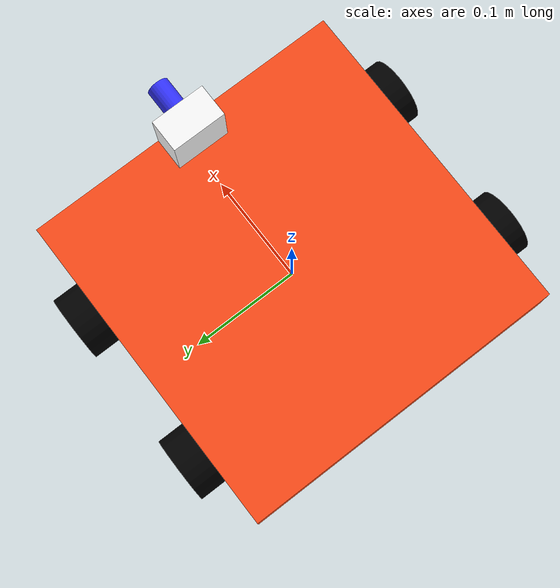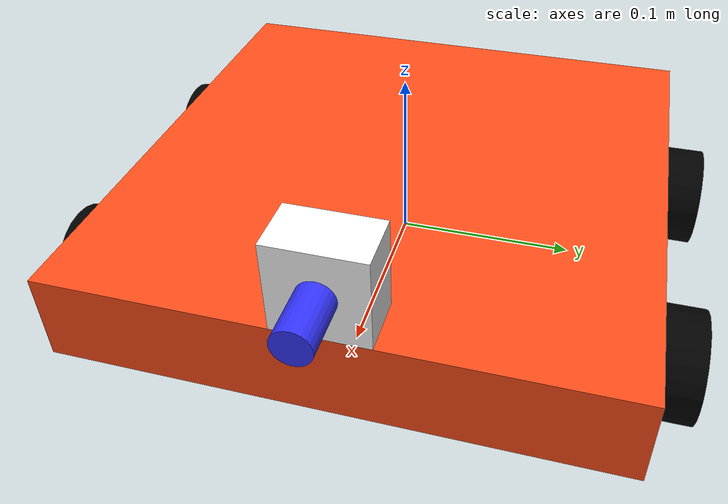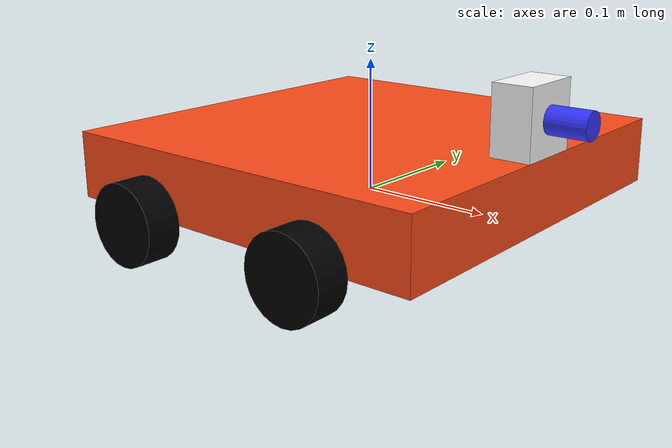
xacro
<?xml version="1.0"?>
<robot xmlns:xacro="http://www.ros.org/wiki/xacro"  name="robot">

     <xacro:arg name="use_ros2_control" default="true"/>

    <!-- define the robot structure -->
    <xacro:include filename="robot.core.xacro" />

    <!-- gazebo materials definitions and gazebo reporting joint states and camera feed from sim. -->
    <xacro:include filename="robot.gazebo.xacro" />

    <!-- gazebo represents and controls the robot via diff drive.  camera etc
        comment out when using either gazebo or hardware ros2 control. -->

    <!-- make a choice about ros control - hardware or simulation -->
    <xacro:if value="$(arg use_ros2_control)">
        <!-- USE ROS2 CONTROL is true -->
        <xacro:include filename="robot.ros2.control.xacro" />
    </xacro:if>

    <xacro:unless value="$(arg use_ros2_control)">
        <!-- USE ROS2 CONTROL is false -->
        <xacro:include filename="robot.gazebo.roscontrol.xacro" />
    </xacro:unless>

    <!-- Should have chosen one by now -->
</robot>

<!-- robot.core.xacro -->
<robot xmlns:xacro="http://www.ros.org/wiki/xacro">

	<xacro:include filename="robot.include.xacro" />

	<!-- base link -->
	<link name="base_link">
	</link>

	<xacro:include filename="robot.chassis.xacro" />
	<xacro:include filename="robot.wheels.xacro" />
	<xacro:include filename="robot.camera.xacro" />
</robot>

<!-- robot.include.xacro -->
<robot xmlns:xacro="http://www.ros.org/wiki/xacro" >

    <!-- Specify some standard inertial calculations https://en.wikipedia.org/wiki/List_of_moments_of_inertia -->
    <!-- These make use of xacro's mathematical functionality -->

    <xacro:macro name="inertial_sphere" params="mass radius *origin">
        <inertial>
            <xacro:insert_block name="origin"/>
            <mass value="${mass}" />
            <inertia ixx="${(2/5) * mass * (radius*radius)}" ixy="0.0" ixz="0.0"
                    iyy="${(2/5) * mass * (radius*radius)}" iyz="0.0"
                    izz="${(2/5) * mass * (radius*radius)}" />
        </inertial>
    </xacro:macro>

    <xacro:macro name="inertial_box" params="mass x y z *origin">
        <inertial>
            <xacro:insert_block name="origin"/>
            <mass value="${mass}" />
            <inertia ixx="${(1/12) * mass * (y*y+z*z)}" ixy="0.0" ixz="0.0"
                    iyy="${(1/12) * mass * (x*x+z*z)}" iyz="0.0"
                    izz="${(1/12) * mass * (x*x+y*y)}" />
        </inertial>
    </xacro:macro>

    <xacro:macro name="inertial_cylinder" params="mass length radius *origin">
        <inertial>
            <xacro:insert_block name="origin"/>
            <mass value="${mass}" />
            <inertia ixx="${(1/12) * mass * (3*radius*radius + length*length)}" ixy="0.0" ixz="0.0"
                    iyy="${(1/12) * mass * (3*radius*radius + length*length)}" iyz="0.0"
                    izz="${(1/2) * mass * (radius*radius)}" />
        </inertial>
    </xacro:macro>

    <xacro:macro name="wheel_joint" params="name parent child xyz side damping friction max_effort max_velocity">
      <joint name="${name}" type="continuous">
        <parent link="${parent}" />
        <child link="${child}" />

        <xacro:if value="${side == 'left'}">
            <origin xyz="${xyz}" rpy="-${pi/2} 0 0"/>
            <axis xyz="0 0 -1"/>
        </xacro:if>
        <xacro:if value="${side == 'right'}">
            <origin xyz="${xyz}" rpy="${pi/2} 0 0"/>
            <axis xyz="0 0 1"/>
        </xacro:if>
        <dynamics damping="${damping}" friction="${friction}"/>
        <limit effort="${max_effort}" velocity="${max_velocity}"/>
      </joint>
    </xacro:macro>

    <xacro:macro name="wheel_link" params="name in_radius in_length in_mass">
        <link name="${name}">
            <visual>
                <geometry> <!-- the weheels are 60mm diameter, 25mm thick. -->
                    <cylinder radius="${in_radius}" length="${in_length}"/>
                </geometry>
                <material name="black"/>
            </visual>

            <collision>
                <origin xyz="0 0 0" rpy="0 0 0"/>
                <geometry>
                    <cylinder length="${in_length}" radius="${in_radius}" />
                </geometry>
            </collision>
            <xacro:inertial_cylinder mass="${in_mass}" length="${in_length}" radius="${in_radius}">
                <!-- I think the origin is the centre of mass - middle of the cylinder -->
                <origin xyz="0 0 0" rpy="0 0 0"/>
            </xacro:inertial_cylinder>
        </link>
    </xacro:macro>

    <xacro:macro name="ros2control_wheel" params="joint_name cmd_min cmd_max">
        <joint name="${joint_name}">
            <command_interface name="velocity">
                <param name="min">${cmd_min}</param>
                <param name="max">${cmd_max}</param>
            </command_interface>
            <state_interface name="velocity"/>
            <state_interface name="position"/>
        </joint>
    </xacro:macro>

    <!-- materials -->

    <material name="white">
        <color rgba="1 1 1 1" />
    </material>

    <material name="orange">
        <color rgba="1 0.3 0.1 1" />
    </material>

    <material name="blue">
        <color rgba="0.2 0.2 1 1" />
    </material>

    <material name="black">
        <color rgba="0 0 0 1" />
    </material>
</robot>

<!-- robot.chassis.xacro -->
<robot xmlns:xacro="http://www.ros.org/wiki/xacro">
	<!-- chassis
	  setting length/width/height as properties so we can do maths ops with them.
	-->

	<!-- 300mm (x) 300mm (y) and 50mm (z) -->
	<xacro:property name="chassis_length" value="0.3" />
    <xacro:property name="chassis_width" value="0.3" />
    <xacro:property name="chassis_height" value="0.05" />
    <xacro:property name="chassis_mass" value="100.0" />

	<joint name="chassis_joint" type="fixed">
		<parent link="base_link"/>
		<child link="chassis_link"/>
		<origin xyz="-${chassis_length/2} 0 0"/>
	</joint>

	<link name="chassis_link">
		<visual>
			<!-- position chassis origin 1/2 chassis lenght relative to the link. -->
			<origin xyz = "${chassis_length/2} 0 ${chassis_height/2}"/>
			<geometry>
				<box size="${chassis_length} ${chassis_width} ${chassis_height}"/>
			</geometry>
			<material name="orange"/>
		</visual>

		<collision>
            <origin xyz="${chassis_length/2} 0 ${chassis_height/2}" rpy="0 0 0"/>
            <geometry>
                <box size="${chassis_length} ${chassis_width} ${chassis_height}" />
            </geometry>
        </collision>
        <xacro:inertial_box mass="${chassis_mass}" x="${chassis_length}" y="${chassis_width}" z="${chassis_height}">
            <origin xyz="${chassis_length/2} 0 ${chassis_height/2}" rpy="0 0 0"/>
        </xacro:inertial_box>
	</link>

</robot>

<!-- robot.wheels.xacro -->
<robot xmlns:xacro="http://www.ros.org/wiki/xacro">

<!-- all the wheels -->
	<xacro:property name="wheel_length" value="0.025" />
    <xacro:property name="wheel_radius" value="0.03" />
    <xacro:property name="wheel_mass" value="0.027"/>
    <xacro:property name="wheel_damping" value="1.0"/>
    <xacro:property name="wheel_friction" value="1.0"/>
    <xacro:property name="wheel_max_effort" value="0.5"/>
    <xacro:property name="wheel_max_velocity" value="1.0"/>

	<!-- front left wheel -->
	<xacro:wheel_joint
		name="front_left_wheel_joint"
		parent="base_link" child="front_left_wheel_link"
		xyz="${chassis_length/4} ${chassis_length/2 + wheel_length/2} 0"
		side="left" damping="${wheel_damping}" friction="${wheel_friction}"
		max_effort="${wheel_max_effort}" max_velocity="${wheel_max_velocity}">
	</xacro:wheel_joint>

	<xacro:wheel_link
		name="front_left_wheel_link"
		in_radius="${wheel_radius}"
		in_length="${wheel_length}"
		in_mass="${wheel_mass}">
	</xacro:wheel_link>

	<!-- front right wheel -->
	<xacro:wheel_joint
		name="front_right_wheel_joint"
		parent="base_link" child="front_right_wheel_link"
		xyz="${chassis_length/4} -${chassis_length/2 + wheel_length/2} 0"
		side="right" damping="${wheel_damping}" friction="${wheel_friction}"
		max_effort="${wheel_max_effort}" max_velocity="${wheel_max_velocity}">
	</xacro:wheel_joint>

	<xacro:wheel_link
		name="front_right_wheel_link"
		in_radius="${wheel_radius}"
		in_length="${wheel_length}"
		in_mass="${wheel_mass}">
	</xacro:wheel_link>

	<!-- rear left wheel -->
	<xacro:wheel_joint
		name="rear_left_wheel_joint"
		parent="base_link" child="rear_left_wheel_link"
		xyz="-${chassis_length/4} ${chassis_length/2 + wheel_length/2} 0"
		side="left" damping="${wheel_damping}" friction="${wheel_friction}"
		max_effort="${wheel_max_effort}" max_velocity="${wheel_max_velocity}">
	</xacro:wheel_joint>

	<xacro:wheel_link
		name="rear_left_wheel_link"
		in_radius="${wheel_radius}"
		in_length="${wheel_length}"
		in_mass="${wheel_mass}">
	</xacro:wheel_link>

	<!-- rear right wheel -->
	<xacro:wheel_joint
		name="rear_right_wheel_joint"
		parent="base_link" child="rear_right_wheel_link"
		xyz="-${chassis_length/4} -${chassis_length/2 + wheel_length/2} 0"
		side="right" damping="${wheel_damping}" friction="${wheel_friction}"
		max_effort="${wheel_max_effort}" max_velocity="${wheel_max_velocity}">
	</xacro:wheel_joint>

	<xacro:wheel_link
		name="rear_right_wheel_link"
		in_radius="${wheel_radius}"
		in_length="${wheel_length}"
		in_mass="${wheel_mass}">
	</xacro:wheel_link>
</robot>

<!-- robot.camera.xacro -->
<robot xmlns:xacro="http://www.ros.org/wiki/xacro">

    <xacro:property name="camera_height" value="0.05" />
    <xacro:property name="camera_width" value="0.05" />
    <xacro:property name="camera_length" value="0.03" />
    <xacro:property name="camera_mass" value="0.1" />

    <xacro:property name="lens_radius" value="0.01" />
    <xacro:property name="lens_length" value="0.03" />
    <xacro:property name="camera_weight" value="0.03" />
	<!-- camera_joint describes where the camera is relative to the arm -->
    <!-- - Even though the camera isn't moving relative to the arm, it will probably be helpful to have its own link/frame rather than just adding more visuals to the arm -->
    <!-- - For this example, the camera_link origin will be at the centre of the camera's "sensor" -->
    <joint name="camera_joint" type="fixed">
        <origin xyz="${chassis_length} 0 ${chassis_height + camera_height /2}" rpy="0 0 0"/>
        <parent link="chassis_link"/>
        <child link="camera_link"/>
    </joint>

    <!-- camera_link describes the camera at the end of the arm -->
    <!-- - It has multiple visual elements, which ultimately get combined together -->
    <!-- - Even if we specify different materials, RViz will just colour them all the same as the first -->
    <!-- - Although we could also specify multiple collision geometries, instead we just use a single box that encompasses the whole camera -->
    <link name="camera_link">
        <visual> <!-- camera body -->
            <origin xyz="-${camera_length /2} 0 0" rpy="0 0 0"/>
            <geometry>
                <box size="${camera_length} ${camera_width} ${camera_height}" />
            </geometry>
            <material name="white" />
        </visual>
        <visual> <!-- camera lens -->
            <origin xyz="${camera_length /2} 0 0" rpy="0 ${pi/2} 0"/>
            <geometry>
                <cylinder length="${lens_length}" radius="${lens_radius}" />
            </geometry>
            <material name="blue" />
        </visual>
        <collision>
            <origin xyz="0.0 0 0" rpy="0 0 0"/>
            <geometry>
                <box size="${camera_length * 2} ${camera_width} ${camera_height}" />
            </geometry>
        </collision>
        <xacro:inertial_box mass="${camera_mass}" x="${camera_length *2}" y="${camera_width}" z="${camera_height}">
            <origin xyz="0.0 0 0" rpy="0 0 0"/>
        </xacro:inertial_box>
    </link>

    <!-- First, create the link and joint for the optical frame -->

    <joint name="camera_optical_joint" type="fixed">
        <origin xyz="0 0 0" rpy="-1.571 0 -1.571" />
        <parent link="camera_link" />
        <child link="camera_link_optical" />
    </joint>

    <link name="camera_link_optical"></link>
</robot>
